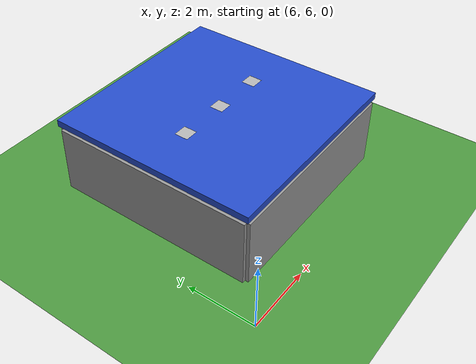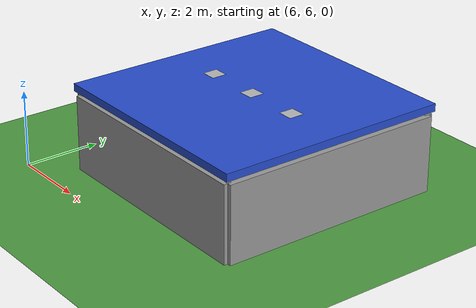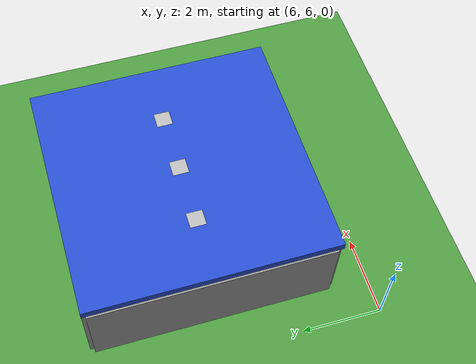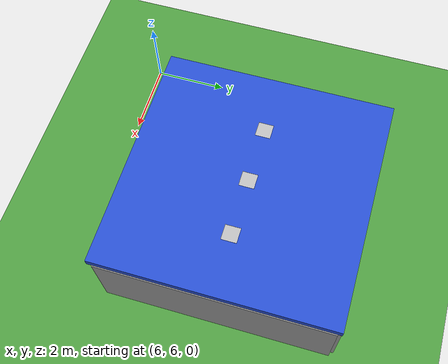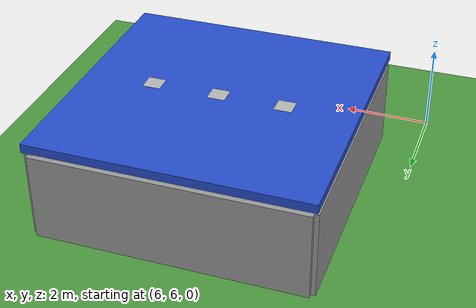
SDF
<sdf version="1.6">
 <world name="default">
  <wind><linear_velocity>11 11 0</linear_velocity></wind>
  <scene><shadows>0</shadows></scene>
  <physics type="ode">
   <ode>
    <solver><type>quick</type><iters>100</iters><sor>1.0</sor></solver>
    <constraints>
     <cfm>0.0</cfm>
     <erp>0.2</erp>
     <contact_max_correcting_vel>0.1</contact_max_correcting_vel>
     <contact_surface_layer>0.0</contact_surface_layer>
    </constraints>
   </ode>
   <real_time_update_rate>-1</real_time_update_rate>
  </physics>
  <gravity>0 0 -9.8</gravity>
  <include><uri>model://sun</uri></include>
  <model name="ground_plane">
   <static>true</static>
   <link name="link">
    <collision name="collision">
     <geometry><plane><normal>0 0 1</normal><size>5000 5000</size></plane></geometry>
     <surface><friction><ode><mu>100</mu><mu2>50</mu2></ode></friction></surface>
    </collision>
    <visual name="background">
     <pose>000 0 -.1 0 0 0</pose>
     <cast_shadows>false</cast_shadows>
     <geometry><plane><normal>0 0 1</normal><size>50 50</size></plane></geometry>
     <material>
      <script><uri>file://media/materials/scripts/gazebo.material</uri><name>Gazebo/Grass</name></script>
     </material>
    </visual>
    <visual name="qrcode1">
     <pose>0 0 .005 0 0 0</pose>
     <cast_shadows>false</cast_shadows>
     <geometry><plane><normal>0 0 1</normal><size>.2 .2</size></plane></geometry>
     <material>
      <script><uri>file://media/materials/scripts/gazebo2.material</uri><name>Gazebo/Aruco72</name></script>
     </material>
    </visual>
   </link>
  </model>
  <model name="house">
   <pose>10 10 0 0 0 0</pose>
   <static>true</static>
   <link name="link">
    <collision name="wall_north">
     <pose>0 3 1 0 0 0</pose>
     <geometry><box><size>6 0.2 2</size></box></geometry>
    </collision>
    <visual name="wall_north">
     <pose>0 3 1 0 0 0</pose>
     <geometry><box><size>6 0.2 2</size></box></geometry>
     <material>
      <script><uri>file://media/materials/scripts/gazebo.material</uri><name>Gazebo/Grey</name></script>
     </material>
    </visual>
    <collision name="wall_south">
     <pose>0 -3 1 0 0 0</pose>
     <geometry><box><size>6 0.2 2</size></box></geometry>
    </collision>
    <visual name="wall_south">
     <pose>0 -3 1 0 0 0</pose>
     <geometry><box><size>6 0.2 2</size></box></geometry>
     <material>
      <script><uri>file://media/materials/scripts/gazebo.material</uri><name>Gazebo/Grey</name></script>
     </material>
    </visual>
    <collision name="wall_east">
     <pose>3 0 1 0 0 0</pose>
     <geometry><box><size>0.2 6 2</size></box></geometry>
    </collision>
    <visual name="wall_east">
     <pose>3 0 1 0 0 0</pose>
     <geometry><box><size>0.2 6 2</size></box></geometry>
     <material>
      <script><uri>file://media/materials/scripts/gazebo.material</uri><name>Gazebo/Grey</name></script>
     </material>
    </visual>
    <collision name="wall_west">
     <pose>-3 0 1 0 0 0</pose>
     <geometry><box><size>0.2 6 2</size></box></geometry>
    </collision>
    <visual name="wall_west">
     <pose>-3 0 1 0 0 0</pose>
     <geometry><box><size>0.2 6 2</size></box></geometry>
     <material>
      <script><uri>file://media/materials/scripts/gazebo.material</uri><name>Gazebo/Grey</name></script>
     </material>
    </visual>
    <collision name="roof">
     <pose>0 0 2.2 0 0 0</pose>
     <geometry><box><size>6.2 6.2 0.2</size></box></geometry>
    </collision>
    <visual name="roof">
     <pose>0 0 2.2 0 0 0</pose>
     <geometry><box><size>6.2 6.2 0.2</size></box></geometry>
     <material>
      <script><uri>file://media/materials/scripts/gazebo.material</uri><name>Gazebo/Blue</name></script>
     </material>
    </visual>
    <visual name="aruco_roof_72">
     <pose>-1.5 0 2.31 0 0 0</pose>
     <cast_shadows>false</cast_shadows>
     <geometry><plane><normal>0 0 1</normal><size>0.4 0.4</size></plane></geometry>
     <material>
      <script><uri>file://media/materials/scripts/gazebo2.material</uri><name>Gazebo/Aruco72</name></script>
     </material>
    </visual>
    <visual name="aruco_roof_226">
     <pose>0 0 2.31 0 0 0</pose>
     <cast_shadows>false</cast_shadows>
     <geometry><plane><normal>0 0 1</normal><size>0.4 0.4</size></plane></geometry>
     <material>
      <script><uri>file://media/materials/scripts/gazebo2.material</uri><name>Gazebo/Aruco226</name></script>
     </material>
    </visual>
    <visual name="aruco_roof_288">
     <pose>1.5 0 2.31 0 0 0</pose>
     <cast_shadows>false</cast_shadows>
     <geometry><plane><normal>0 0 1</normal><size>0.4 0.4</size></plane></geometry>
     <material>
      <script><uri>file://media/materials/scripts/gazebo2.material</uri><name>Gazebo/Aruco288</name></script>
     </material>
    </visual>
   </link>
  </model>
 </world>
</sdf>
